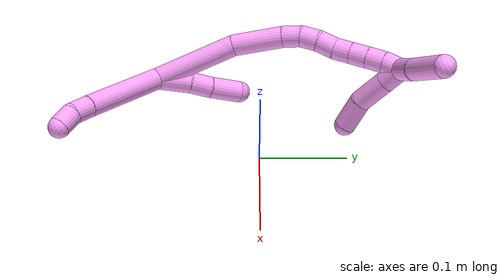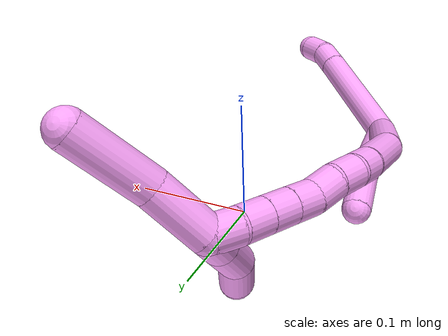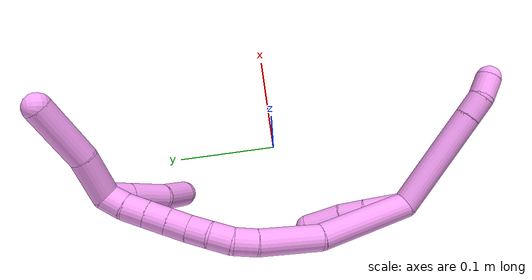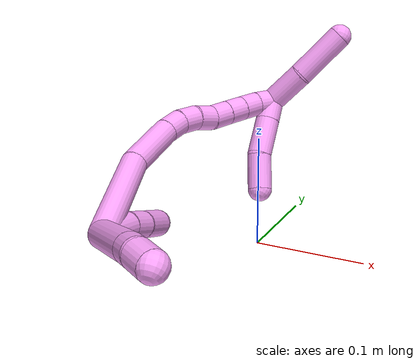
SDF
<sdf version="1.7">
 <world name="default">
  <model name="4">
   <static>0</static>
   <link name="4">
    <collision name="collision-cylinder-e_1_2_8">
     <pose>0.041677 -0.024176 -0.020626 2.27712 0.919343 1.64126</pose>
     <geometry><cylinder><radius>0.0125</radius><length>0.104822</length></cylinder></geometry>
     <surface>
      <friction><ode><mu>1.16</mu><mu2>1.16</mu2><slip1>0</slip1><slip2>0</slip2></ode></friction>
      <contact><ode><kp>1e+06</kp><kd>1</kd><max_vel>0</max_vel><min_depth>0.001</min_depth></ode></contact>
     </surface>
    </collision>
    <visual name="visual-cylinder-e_1_2_8">
     <pose>0.041677 -0.024176 -0.020626 2.27712 0.919343 1.64126</pose>
     <geometry><cylinder><radius>0.0125</radius><length>0.104822</length></cylinder></geometry>
     <material><ambient>1 0.65098 0.996078 1</ambient></material>
    </visual>
    <collision name="collision-cylinder-e_2_8_9">
     <pose>0.092373 -0.053303 -0.046092 2.34492 0.916015 1.72835</pose>
     <geometry><cylinder><radius>0.0125</radius><length>0.022738</length></cylinder></geometry>
     <surface>
      <friction><ode><mu>1.16</mu><mu2>1.16</mu2><slip1>0</slip1><slip2>0</slip2></ode></friction>
      <contact><ode><kp>1e+06</kp><kd>1</kd><max_vel>0</max_vel><min_depth>0.001</min_depth></ode></contact>
     </surface>
    </collision>
    <visual name="visual-cylinder-e_2_8_9">
     <pose>0.092373 -0.053303 -0.046092 2.34492 0.916015 1.72835</pose>
     <geometry><cylinder><radius>0.0125</radius><length>0.022738</length></cylinder></geometry>
     <material><ambient>1 0.65098 0.996078 1</ambient></material>
    </visual>
    <collision name="collision-cylinder-e_3_9_6">
     <pose>0.11108 -0.059585 -0.05643 2.90394 1.04238 2.73156</pose>
     <geometry><cylinder><radius>0.0125</radius><length>0.02244</length></cylinder></geometry>
     <surface>
      <friction><ode><mu>1.16</mu><mu2>1.16</mu2><slip1>0</slip1><slip2>0</slip2></ode></friction>
      <contact><ode><kp>1e+06</kp><kd>1</kd><max_vel>0</max_vel><min_depth>0.001</min_depth></ode></contact>
     </surface>
    </collision>
    <visual name="visual-cylinder-e_3_9_6">
     <pose>0.11108 -0.059585 -0.05643 2.90394 1.04238 2.73156</pose>
     <geometry><cylinder><radius>0.0125</radius><length>0.02244</length></cylinder></geometry>
     <material><ambient>1 0.65098 0.996078 1</ambient></material>
    </visual>
    <collision name="collision-cylinder-e_1_2_10">
     <pose>-0.002949 0.0147 0.012527 -0.865041 -0.151508 0.070053</pose>
     <geometry><cylinder><radius>0.0125</radius><length>0.039076</length></cylinder></geometry>
     <surface>
      <friction><ode><mu>1.16</mu><mu2>1.16</mu2><slip1>0</slip1><slip2>0</slip2></ode></friction>
      <contact><ode><kp>1e+06</kp><kd>1</kd><max_vel>0</max_vel><min_depth>0.001</min_depth></ode></contact>
     </surface>
    </collision>
    <visual name="visual-cylinder-e_1_2_10">
     <pose>-0.002949 0.0147 0.012527 -0.865041 -0.151508 0.070053</pose>
     <geometry><cylinder><radius>0.0125</radius><length>0.039076</length></cylinder></geometry>
     <material><ambient>1 0.65098 0.996078 1</ambient></material>
    </visual>
    <collision name="collision-cylinder-e_2_10_11">
     <pose>-0.008002 0.039706 0.031513 -1.01096 -0.171357 0.094997</pose>
     <geometry><cylinder><radius>0.0125</radius><length>0.024686</length></cylinder></geometry>
     <surface>
      <friction><ode><mu>1.16</mu><mu2>1.16</mu2><slip1>0</slip1><slip2>0</slip2></ode></friction>
      <contact><ode><kp>1e+06</kp><kd>1</kd><max_vel>0</max_vel><min_depth>0.001</min_depth></ode></contact>
     </surface>
    </collision>
    <visual name="visual-cylinder-e_2_10_11">
     <pose>-0.008002 0.039706 0.031513 -1.01096 -0.171357 0.094997</pose>
     <geometry><cylinder><radius>0.0125</radius><length>0.024686</length></cylinder></geometry>
     <material><ambient>1 0.65098 0.996078 1</ambient></material>
    </visual>
    <collision name="collision-cylinder-e_3_11_5">
     <pose>-0.015349 0.064636 0.047297 -1.00319 -0.293492 0.161755</pose>
     <geometry><cylinder><radius>0.0125</radius><length>0.036239</length></cylinder></geometry>
     <surface>
      <friction><ode><mu>1.16</mu><mu2>1.16</mu2><slip1>0</slip1><slip2>0</slip2></ode></friction>
      <contact><ode><kp>1e+06</kp><kd>1</kd><max_vel>0</max_vel><min_depth>0.001</min_depth></ode></contact>
     </surface>
    </collision>
    <visual name="visual-cylinder-e_3_11_5">
     <pose>-0.015349 0.064636 0.047297 -1.00319 -0.293492 0.161755</pose>
     <geometry><cylinder><radius>0.0125</radius><length>0.036239</length></cylinder></geometry>
     <material><ambient>1 0.65098 0.996078 1</ambient></material>
    </visual>
    <collision name="collision-cylinder-e_1_2_12">
     <pose>-0.011729 0.013612 0.045211 -0.292436 -0.243479 0.036031</pose>
     <geometry><cylinder><radius>0.0125</radius><length>0.097301</length></cylinder></geometry>
     <surface>
      <friction><ode><mu>1.16</mu><mu2>1.16</mu2><slip1>0</slip1><slip2>0</slip2></ode></friction>
      <contact><ode><kp>1e+06</kp><kd>1</kd><max_vel>0</max_vel><min_depth>0.001</min_depth></ode></contact>
     </surface>
    </collision>
    <visual name="visual-cylinder-e_1_2_12">
     <pose>-0.011729 0.013612 0.045211 -0.292436 -0.243479 0.036031</pose>
     <geometry><cylinder><radius>0.0125</radius><length>0.097301</length></cylinder></geometry>
     <material><ambient>1 0.65098 0.996078 1</ambient></material>
    </visual>
    <collision name="collision-cylinder-e_2_12_13">
     <pose>-0.023602 0.039777 0.11726 -0.437518 -0.00489 0.001087</pose>
     <geometry><cylinder><radius>0.0125</radius><length>0.059258</length></cylinder></geometry>
     <surface>
      <friction><ode><mu>1.16</mu><mu2>1.16</mu2><slip1>0</slip1><slip2>0</slip2></ode></friction>
      <contact><ode><kp>1e+06</kp><kd>1</kd><max_vel>0</max_vel><min_depth>0.001</min_depth></ode></contact>
     </surface>
    </collision>
    <visual name="visual-cylinder-e_2_12_13">
     <pose>-0.023602 0.039777 0.11726 -0.437518 -0.00489 0.001087</pose>
     <geometry><cylinder><radius>0.0125</radius><length>0.059258</length></cylinder></geometry>
     <material><ambient>1 0.65098 0.996078 1</ambient></material>
    </visual>
    <collision name="collision-cylinder-e_3_13_14">
     <pose>-0.022357 0.057775 0.153414 -0.528881 0.128115 -0.034735</pose>
     <geometry><cylinder><radius>0.0125</radius><length>0.02176</length></cylinder></geometry>
     <surface>
      <friction><ode><mu>1.16</mu><mu2>1.16</mu2><slip1>0</slip1><slip2>0</slip2></ode></friction>
      <contact><ode><kp>1e+06</kp><kd>1</kd><max_vel>0</max_vel><min_depth>0.001</min_depth></ode></contact>
     </surface>
    </collision>
    <visual name="visual-cylinder-e_3_13_14">
     <pose>-0.022357 0.057775 0.153414 -0.528881 0.128115 -0.034735</pose>
     <geometry><cylinder><radius>0.0125</radius><length>0.02176</length></cylinder></geometry>
     <material><ambient>1 0.65098 0.996078 1</ambient></material>
    </visual>
    <collision name="collision-cylinder-e_4_14_15">
     <pose>-0.017918 0.069907 0.169832 -0.755364 0.302908 -0.120952</pose>
     <geometry><cylinder><radius>0.0125</radius><length>0.020441</length></cylinder></geometry>
     <surface>
      <friction><ode><mu>1.16</mu><mu2>1.16</mu2><slip1>0</slip1><slip2>0</slip2></ode></friction>
      <contact><ode><kp>1e+06</kp><kd>1</kd><max_vel>0</max_vel><min_depth>0.001</min_depth></ode></contact>
     </surface>
    </collision>
    <visual name="visual-cylinder-e_4_14_15">
     <pose>-0.017918 0.069907 0.169832 -0.755364 0.302908 -0.120952</pose>
     <geometry><cylinder><radius>0.0125</radius><length>0.020441</length></cylinder></geometry>
     <material><ambient>1 0.65098 0.996078 1</ambient></material>
    </visual>
    <collision name="collision-cylinder-e_5_15_16">
     <pose>-0.012043 0.084993 0.182596 -0.977602 0.272126 -0.145373</pose>
     <geometry><cylinder><radius>0.0125</radius><length>0.021031</length></cylinder></geometry>
     <surface>
      <friction><ode><mu>1.16</mu><mu2>1.16</mu2><slip1>0</slip1><slip2>0</slip2></ode></friction>
      <contact><ode><kp>1e+06</kp><kd>1</kd><max_vel>0</max_vel><min_depth>0.001</min_depth></ode></contact>
     </surface>
    </collision>
    <visual name="visual-cylinder-e_5_15_16">
     <pose>-0.012043 0.084993 0.182596 -0.977602 0.272126 -0.145373</pose>
     <geometry><cylinder><radius>0.0125</radius><length>0.021031</length></cylinder></geometry>
     <material><ambient>1 0.65098 0.996078 1</ambient></material>
    </visual>
    <collision name="collision-cylinder-e_6_16_17">
     <pose>-0.005568 0.099529 0.195372 -0.711899 0.370457 -0.139103</pose>
     <geometry><cylinder><radius>0.0125</radius><length>0.02016</length></cylinder></geometry>
     <surface>
      <friction><ode><mu>1.16</mu><mu2>1.16</mu2><slip1>0</slip1><slip2>0</slip2></ode></friction>
      <contact><ode><kp>1e+06</kp><kd>1</kd><max_vel>0</max_vel><min_depth>0.001</min_depth></ode></contact>
     </surface>
    </collision>
    <visual name="visual-cylinder-e_6_16_17">
     <pose>-0.005568 0.099529 0.195372 -0.711899 0.370457 -0.139103</pose>
     <geometry><cylinder><radius>0.0125</radius><length>0.02016</length></cylinder></geometry>
     <material><ambient>1 0.65098 0.996078 1</ambient></material>
    </visual>
    <collision name="collision-cylinder-e_7_17_18">
     <pose>0.001703 0.111823 0.209509 -0.719677 0.36991 -0.140544</pose>
     <geometry><cylinder><radius>0.0125</radius><length>0.020033</length></cylinder></geometry>
     <surface>
      <friction><ode><mu>1.16</mu><mu2>1.16</mu2><slip1>0</slip1><slip2>0</slip2></ode></friction>
      <contact><ode><kp>1e+06</kp><kd>1</kd><max_vel>0</max_vel><min_depth>0.001</min_depth></ode></contact>
     </surface>
    </collision>
    <visual name="visual-cylinder-e_7_17_18">
     <pose>0.001703 0.111823 0.209509 -0.719677 0.36991 -0.140544</pose>
     <geometry><cylinder><radius>0.0125</radius><length>0.020033</length></cylinder></geometry>
     <material><ambient>1 0.65098 0.996078 1</ambient></material>
    </visual>
    <collision name="collision-cylinder-e_8_18_19">
     <pose>0.00897 0.124152 0.223504 -0.724745 0.373162 -0.142892</pose>
     <geometry><cylinder><radius>0.0125</radius><length>0.020002</length></cylinder></geometry>
     <surface>
      <friction><ode><mu>1.16</mu><mu2>1.16</mu2><slip1>0</slip1><slip2>0</slip2></ode></friction>
      <contact><ode><kp>1e+06</kp><kd>1</kd><max_vel>0</max_vel><min_depth>0.001</min_depth></ode></contact>
     </surface>
    </collision>
    <visual name="visual-cylinder-e_8_18_19">
     <pose>0.00897 0.124152 0.223504 -0.724745 0.373162 -0.142892</pose>
     <geometry><cylinder><radius>0.0125</radius><length>0.020002</length></cylinder></geometry>
     <material><ambient>1 0.65098 0.996078 1</ambient></material>
    </visual>
    <collision name="collision-cylinder-e_9_19_1">
     <pose>0.017595 0.13669 0.236381 -0.822873 0.520689 -0.231435</pose>
     <geometry><cylinder><radius>0.0125</radius><length>0.020015</length></cylinder></geometry>
     <surface>
      <friction><ode><mu>1.16</mu><mu2>1.16</mu2><slip1>0</slip1><slip2>0</slip2></ode></friction>
      <contact><ode><kp>1e+06</kp><kd>1</kd><max_vel>0</max_vel><min_depth>0.001</min_depth></ode></contact>
     </surface>
    </collision>
    <visual name="visual-cylinder-e_9_19_1">
     <pose>0.017595 0.13669 0.236381 -0.822873 0.520689 -0.231435</pose>
     <geometry><cylinder><radius>0.0125</radius><length>0.020015</length></cylinder></geometry>
     <material><ambient>1 0.65098 0.996078 1</ambient></material>
    </visual>
    <collision name="collision-cylinder-e_1_1_20">
     <pose>0.039901 0.1385 0.25407 0.368807 0.940774 0.18911</pose>
     <geometry><cylinder><radius>0.0125</radius><length>0.04289</length></cylinder></geometry>
     <surface>
      <friction><ode><mu>1.16</mu><mu2>1.16</mu2><slip1>0</slip1><slip2>0</slip2></ode></friction>
      <contact><ode><kp>1e+06</kp><kd>1</kd><max_vel>0</max_vel><min_depth>0.001</min_depth></ode></contact>
     </surface>
    </collision>
    <visual name="visual-cylinder-e_1_1_20">
     <pose>0.039901 0.1385 0.25407 0.368807 0.940774 0.18911</pose>
     <geometry><cylinder><radius>0.0125</radius><length>0.04289</length></cylinder></geometry>
     <material><ambient>1 0.65098 0.996078 1</ambient></material>
    </visual>
    <collision name="collision-cylinder-e_2_20_4">
     <pose>0.077724 0.130502 0.285438 0.174033 0.800537 0.073788</pose>
     <geometry><cylinder><radius>0.0125</radius><length>0.05711</length></cylinder></geometry>
     <surface>
      <friction><ode><mu>1.16</mu><mu2>1.16</mu2><slip1>0</slip1><slip2>0</slip2></ode></friction>
      <contact><ode><kp>1e+06</kp><kd>1</kd><max_vel>0</max_vel><min_depth>0.001</min_depth></ode></contact>
     </surface>
    </collision>
    <visual name="visual-cylinder-e_2_20_4">
     <pose>0.077724 0.130502 0.285438 0.174033 0.800537 0.073788</pose>
     <geometry><cylinder><radius>0.0125</radius><length>0.05711</length></cylinder></geometry>
     <material><ambient>1 0.65098 0.996078 1</ambient></material>
    </visual>
    <collision name="collision-cylinder-e_1_1_21">
     <pose>0.021617 0.145118 0.230648 -2.96613 -0.080703 0.860668</pose>
     <geometry><cylinder><radius>0.0125</radius><length>0.023715</length></cylinder></geometry>
     <surface>
      <friction><ode><mu>1.16</mu><mu2>1.16</mu2><slip1>0</slip1><slip2>0</slip2></ode></friction>
      <contact><ode><kp>1e+06</kp><kd>1</kd><max_vel>0</max_vel><min_depth>0.001</min_depth></ode></contact>
     </surface>
    </collision>
    <visual name="visual-cylinder-e_1_1_21">
     <pose>0.021617 0.145118 0.230648 -2.96613 -0.080703 0.860668</pose>
     <geometry><cylinder><radius>0.0125</radius><length>0.023715</length></cylinder></geometry>
     <material><ambient>1 0.65098 0.996078 1</ambient></material>
    </visual>
    <collision name="collision-cylinder-e_2_21_22">
     <pose>0.01892 0.150574 0.199484 -2.96952 -0.08766 0.940845</pose>
     <geometry><cylinder><radius>0.0125</radius><length>0.03979</length></cylinder></geometry>
     <surface>
      <friction><ode><mu>1.16</mu><mu2>1.16</mu2><slip1>0</slip1><slip2>0</slip2></ode></friction>
      <contact><ode><kp>1e+06</kp><kd>1</kd><max_vel>0</max_vel><min_depth>0.001</min_depth></ode></contact>
     </surface>
    </collision>
    <visual name="visual-cylinder-e_2_21_22">
     <pose>0.01892 0.150574 0.199484 -2.96952 -0.08766 0.940845</pose>
     <geometry><cylinder><radius>0.0125</radius><length>0.03979</length></cylinder></geometry>
     <material><ambient>1 0.65098 0.996078 1</ambient></material>
    </visual>
    <collision name="collision-cylinder-e_3_22_3">
     <pose>0.017631 0.161768 0.163468 -2.69975 0.024806 -0.110344</pose>
     <geometry><cylinder><radius>0.0125</radius><length>0.036495</length></cylinder></geometry>
     <surface>
      <friction><ode><mu>1.16</mu><mu2>1.16</mu2><slip1>0</slip1><slip2>0</slip2></ode></friction>
      <contact><ode><kp>1e+06</kp><kd>1</kd><max_vel>0</max_vel><min_depth>0.001</min_depth></ode></contact>
     </surface>
    </collision>
    <visual name="visual-cylinder-e_3_22_3">
     <pose>0.017631 0.161768 0.163468 -2.69975 0.024806 -0.110344</pose>
     <geometry><cylinder><radius>0.0125</radius><length>0.036495</length></cylinder></geometry>
     <material><ambient>1 0.65098 0.996078 1</ambient></material>
    </visual>
    <collision name="collision-sphere-3">
     <pose>0.018083 0.169568 0.146978 0 -0 0</pose>
     <geometry><sphere><radius>0.0125</radius></sphere></geometry>
     <surface>
      <friction><ode><mu>1.16</mu><mu2>1.16</mu2><slip1>0</slip1><slip2>0</slip2></ode></friction>
      <contact><ode><kp>1e+06</kp><kd>1</kd><max_vel>0</max_vel><min_depth>0.001</min_depth></ode></contact>
     </surface>
    </collision>
    <visual name="visual-sphere-3">
     <pose>0.018083 0.169568 0.146978 0 -0 0</pose>
     <geometry><sphere><radius>0.0125</radius></sphere></geometry>
     <material><ambient>1 0.65098 0.996078 1</ambient></material>
    </visual>
    <collision name="collision-sphere-22">
     <pose>0.017178 0.153968 0.179958 0 -0 0</pose>
     <geometry><sphere><radius>0.0125</radius></sphere></geometry>
     <surface>
      <friction><ode><mu>1.16</mu><mu2>1.16</mu2><slip1>0</slip1><slip2>0</slip2></ode></friction>
      <contact><ode><kp>1e+06</kp><kd>1</kd><max_vel>0</max_vel><min_depth>0.001</min_depth></ode></contact>
     </surface>
    </collision>
    <visual name="visual-sphere-22">
     <pose>0.017178 0.153968 0.179958 0 -0 0</pose>
     <geometry><sphere><radius>0.0125</radius></sphere></geometry>
     <material><ambient>1 0.65098 0.996078 1</ambient></material>
    </visual>
    <collision name="collision-sphere-21">
     <pose>0.020661 0.147181 0.21901 0 -0 0</pose>
     <geometry><sphere><radius>0.0125</radius></sphere></geometry>
     <surface>
      <friction><ode><mu>1.16</mu><mu2>1.16</mu2><slip1>0</slip1><slip2>0</slip2></ode></friction>
      <contact><ode><kp>1e+06</kp><kd>1</kd><max_vel>0</max_vel><min_depth>0.001</min_depth></ode></contact>
     </surface>
    </collision>
    <visual name="visual-sphere-21">
     <pose>0.020661 0.147181 0.21901 0 -0 0</pose>
     <geometry><sphere><radius>0.0125</radius></sphere></geometry>
     <material><ambient>1 0.65098 0.996078 1</ambient></material>
    </visual>
    <collision name="collision-sphere-4">
     <pose>0.098219 0.127059 0.305021 0 -0 0</pose>
     <geometry><sphere><radius>0.0125</radius></sphere></geometry>
     <surface>
      <friction><ode><mu>1.16</mu><mu2>1.16</mu2><slip1>0</slip1><slip2>0</slip2></ode></friction>
      <contact><ode><kp>1e+06</kp><kd>1</kd><max_vel>0</max_vel><min_depth>0.001</min_depth></ode></contact>
     </surface>
    </collision>
    <visual name="visual-sphere-4">
     <pose>0.098219 0.127059 0.305021 0 -0 0</pose>
     <geometry><sphere><radius>0.0125</radius></sphere></geometry>
     <material><ambient>1 0.65098 0.996078 1</ambient></material>
    </visual>
    <collision name="collision-sphere-20">
     <pose>0.057229 0.133945 0.265855 0 -0 0</pose>
     <geometry><sphere><radius>0.0125</radius></sphere></geometry>
     <surface>
      <friction><ode><mu>1.16</mu><mu2>1.16</mu2><slip1>0</slip1><slip2>0</slip2></ode></friction>
      <contact><ode><kp>1e+06</kp><kd>1</kd><max_vel>0</max_vel><min_depth>0.001</min_depth></ode></contact>
     </surface>
    </collision>
    <visual name="visual-sphere-20">
     <pose>0.057229 0.133945 0.265855 0 -0 0</pose>
     <geometry><sphere><radius>0.0125</radius></sphere></geometry>
     <material><ambient>1 0.65098 0.996078 1</ambient></material>
    </visual>
    <collision name="collision-sphere-11">
     <pose>-0.010107 0.050012 0.037972 0 -0 0</pose>
     <geometry><sphere><radius>0.0125</radius></sphere></geometry>
     <surface>
      <friction><ode><mu>1.16</mu><mu2>1.16</mu2><slip1>0</slip1><slip2>0</slip2></ode></friction>
      <contact><ode><kp>1e+06</kp><kd>1</kd><max_vel>0</max_vel><min_depth>0.001</min_depth></ode></contact>
     </surface>
    </collision>
    <visual name="visual-sphere-11">
     <pose>-0.010107 0.050012 0.037972 0 -0 0</pose>
     <geometry><sphere><radius>0.0125</radius></sphere></geometry>
     <material><ambient>1 0.65098 0.996078 1</ambient></material>
    </visual>
    <collision name="collision-sphere-10">
     <pose>-0.005898 0.029401 0.025055 0 -0 0</pose>
     <geometry><sphere><radius>0.0125</radius></sphere></geometry>
     <surface>
      <friction><ode><mu>1.16</mu><mu2>1.16</mu2><slip1>0</slip1><slip2>0</slip2></ode></friction>
      <contact><ode><kp>1e+06</kp><kd>1</kd><max_vel>0</max_vel><min_depth>0.001</min_depth></ode></contact>
     </surface>
    </collision>
    <visual name="visual-sphere-10">
     <pose>-0.005898 0.029401 0.025055 0 -0 0</pose>
     <geometry><sphere><radius>0.0125</radius></sphere></geometry>
     <material><ambient>1 0.65098 0.996078 1</ambient></material>
    </visual>
    <collision name="collision-sphere-6">
     <pose>0.12077 -0.060917 -0.061928 0 -0 0</pose>
     <geometry><sphere><radius>0.0125</radius></sphere></geometry>
     <surface>
      <friction><ode><mu>1.16</mu><mu2>1.16</mu2><slip1>0</slip1><slip2>0</slip2></ode></friction>
      <contact><ode><kp>1e+06</kp><kd>1</kd><max_vel>0</max_vel><min_depth>0.001</min_depth></ode></contact>
     </surface>
    </collision>
    <visual name="visual-sphere-6">
     <pose>0.12077 -0.060917 -0.061928 0 -0 0</pose>
     <geometry><sphere><radius>0.0125</radius></sphere></geometry>
     <material><ambient>1 0.65098 0.996078 1</ambient></material>
    </visual>
    <collision name="collision-sphere-9">
     <pose>0.10139 -0.058253 -0.050932 0 -0 0</pose>
     <geometry><sphere><radius>0.0125</radius></sphere></geometry>
     <surface>
      <friction><ode><mu>1.16</mu><mu2>1.16</mu2><slip1>0</slip1><slip2>0</slip2></ode></friction>
      <contact><ode><kp>1e+06</kp><kd>1</kd><max_vel>0</max_vel><min_depth>0.001</min_depth></ode></contact>
     </surface>
    </collision>
    <visual name="visual-sphere-9">
     <pose>0.10139 -0.058253 -0.050932 0 -0 0</pose>
     <geometry><sphere><radius>0.0125</radius></sphere></geometry>
     <material><ambient>1 0.65098 0.996078 1</ambient></material>
    </visual>
    <collision name="collision-sphere-2">
     <geometry><sphere><radius>0.0125</radius></sphere></geometry>
     <surface>
      <friction><ode><mu>1.16</mu><mu2>1.16</mu2><slip1>0</slip1><slip2>0</slip2></ode></friction>
      <contact><ode><kp>1e+06</kp><kd>1</kd><max_vel>0</max_vel><min_depth>0.001</min_depth></ode></contact>
     </surface>
    </collision>
    <visual name="visual-sphere-2">
     <geometry><sphere><radius>0.0125</radius></sphere></geometry>
     <material><ambient>1 0.65098 0.996078 1</ambient></material>
    </visual>
    <collision name="collision-sphere-19">
     <pose>0.012616 0.130326 0.230477 0 -0 0</pose>
     <geometry><sphere><radius>0.0125</radius></sphere></geometry>
     <surface>
      <friction><ode><mu>1.16</mu><mu2>1.16</mu2><slip1>0</slip1><slip2>0</slip2></ode></friction>
      <contact><ode><kp>1e+06</kp><kd>1</kd><max_vel>0</max_vel><min_depth>0.001</min_depth></ode></contact>
     </surface>
    </collision>
    <visual name="visual-sphere-19">
     <pose>0.012616 0.130326 0.230477 0 -0 0</pose>
     <geometry><sphere><radius>0.0125</radius></sphere></geometry>
     <material><ambient>1 0.65098 0.996078 1</ambient></material>
    </visual>
    <collision name="collision-sphere-8">
     <pose>0.083355 -0.048352 -0.041252 0 -0 0</pose>
     <geometry><sphere><radius>0.0125</radius></sphere></geometry>
     <surface>
      <friction><ode><mu>1.16</mu><mu2>1.16</mu2><slip1>0</slip1><slip2>0</slip2></ode></friction>
      <contact><ode><kp>1e+06</kp><kd>1</kd><max_vel>0</max_vel><min_depth>0.001</min_depth></ode></contact>
     </surface>
    </collision>
    <visual name="visual-sphere-8">
     <pose>0.083355 -0.048352 -0.041252 0 -0 0</pose>
     <geometry><sphere><radius>0.0125</radius></sphere></geometry>
     <material><ambient>1 0.65098 0.996078 1</ambient></material>
    </visual>
    <collision name="collision-sphere-5">
     <pose>-0.020591 0.079261 0.056621 0 -0 0</pose>
     <geometry><sphere><radius>0.0125</radius></sphere></geometry>
     <surface>
      <friction><ode><mu>1.16</mu><mu2>1.16</mu2><slip1>0</slip1><slip2>0</slip2></ode></friction>
      <contact><ode><kp>1e+06</kp><kd>1</kd><max_vel>0</max_vel><min_depth>0.001</min_depth></ode></contact>
     </surface>
    </collision>
    <visual name="visual-sphere-5">
     <pose>-0.020591 0.079261 0.056621 0 -0 0</pose>
     <geometry><sphere><radius>0.0125</radius></sphere></geometry>
     <material><ambient>1 0.65098 0.996078 1</ambient></material>
    </visual>
    <collision name="collision-sphere-12">
     <pose>-0.023457 0.027223 0.090422 0 -0 0</pose>
     <geometry><sphere><radius>0.0125</radius></sphere></geometry>
     <surface>
      <friction><ode><mu>1.16</mu><mu2>1.16</mu2><slip1>0</slip1><slip2>0</slip2></ode></friction>
      <contact><ode><kp>1e+06</kp><kd>1</kd><max_vel>0</max_vel><min_depth>0.001</min_depth></ode></contact>
     </surface>
    </collision>
    <visual name="visual-sphere-12">
     <pose>-0.023457 0.027223 0.090422 0 -0 0</pose>
     <geometry><sphere><radius>0.0125</radius></sphere></geometry>
     <material><ambient>1 0.65098 0.996078 1</ambient></material>
    </visual>
    <collision name="collision-sphere-13">
     <pose>-0.023747 0.05233 0.144098 0 -0 0</pose>
     <geometry><sphere><radius>0.0125</radius></sphere></geometry>
     <surface>
      <friction><ode><mu>1.16</mu><mu2>1.16</mu2><slip1>0</slip1><slip2>0</slip2></ode></friction>
      <contact><ode><kp>1e+06</kp><kd>1</kd><max_vel>0</max_vel><min_depth>0.001</min_depth></ode></contact>
     </surface>
    </collision>
    <visual name="visual-sphere-13">
     <pose>-0.023747 0.05233 0.144098 0 -0 0</pose>
     <geometry><sphere><radius>0.0125</radius></sphere></geometry>
     <material><ambient>1 0.65098 0.996078 1</ambient></material>
    </visual>
    <collision name="collision-sphere-14">
     <pose>-0.020967 0.063219 0.162731 0 -0 0</pose>
     <geometry><sphere><radius>0.0125</radius></sphere></geometry>
     <surface>
      <friction><ode><mu>1.16</mu><mu2>1.16</mu2><slip1>0</slip1><slip2>0</slip2></ode></friction>
      <contact><ode><kp>1e+06</kp><kd>1</kd><max_vel>0</max_vel><min_depth>0.001</min_depth></ode></contact>
     </surface>
    </collision>
    <visual name="visual-sphere-14">
     <pose>-0.020967 0.063219 0.162731 0 -0 0</pose>
     <geometry><sphere><radius>0.0125</radius></sphere></geometry>
     <material><ambient>1 0.65098 0.996078 1</ambient></material>
    </visual>
    <collision name="collision-sphere-15">
     <pose>-0.01487 0.076595 0.176934 0 -0 0</pose>
     <geometry><sphere><radius>0.0125</radius></sphere></geometry>
     <surface>
      <friction><ode><mu>1.16</mu><mu2>1.16</mu2><slip1>0</slip1><slip2>0</slip2></ode></friction>
      <contact><ode><kp>1e+06</kp><kd>1</kd><max_vel>0</max_vel><min_depth>0.001</min_depth></ode></contact>
     </surface>
    </collision>
    <visual name="visual-sphere-15">
     <pose>-0.01487 0.076595 0.176934 0 -0 0</pose>
     <geometry><sphere><radius>0.0125</radius></sphere></geometry>
     <material><ambient>1 0.65098 0.996078 1</ambient></material>
    </visual>
    <collision name="collision-sphere-16">
     <pose>-0.009217 0.093391 0.188258 0 -0 0</pose>
     <geometry><sphere><radius>0.0125</radius></sphere></geometry>
     <surface>
      <friction><ode><mu>1.16</mu><mu2>1.16</mu2><slip1>0</slip1><slip2>0</slip2></ode></friction>
      <contact><ode><kp>1e+06</kp><kd>1</kd><max_vel>0</max_vel><min_depth>0.001</min_depth></ode></contact>
     </surface>
    </collision>
    <visual name="visual-sphere-16">
     <pose>-0.009217 0.093391 0.188258 0 -0 0</pose>
     <geometry><sphere><radius>0.0125</radius></sphere></geometry>
     <material><ambient>1 0.65098 0.996078 1</ambient></material>
    </visual>
    <collision name="collision-sphere-17">
     <pose>-0.001918 0.105667 0.202486 0 -0 0</pose>
     <geometry><sphere><radius>0.0125</radius></sphere></geometry>
     <surface>
      <friction><ode><mu>1.16</mu><mu2>1.16</mu2><slip1>0</slip1><slip2>0</slip2></ode></friction>
      <contact><ode><kp>1e+06</kp><kd>1</kd><max_vel>0</max_vel><min_depth>0.001</min_depth></ode></contact>
     </surface>
    </collision>
    <visual name="visual-sphere-17">
     <pose>-0.001918 0.105667 0.202486 0 -0 0</pose>
     <geometry><sphere><radius>0.0125</radius></sphere></geometry>
     <material><ambient>1 0.65098 0.996078 1</ambient></material>
    </visual>
    <collision name="collision-sphere-18">
     <pose>0.005324 0.117978 0.216532 0 -0 0</pose>
     <geometry><sphere><radius>0.0125</radius></sphere></geometry>
     <surface>
      <friction><ode><mu>1.16</mu><mu2>1.16</mu2><slip1>0</slip1><slip2>0</slip2></ode></friction>
      <contact><ode><kp>1e+06</kp><kd>1</kd><max_vel>0</max_vel><min_depth>0.001</min_depth></ode></contact>
     </surface>
    </collision>
    <visual name="visual-sphere-18">
     <pose>0.005324 0.117978 0.216532 0 -0 0</pose>
     <geometry><sphere><radius>0.0125</radius></sphere></geometry>
     <material><ambient>1 0.65098 0.996078 1</ambient></material>
    </visual>
    <collision name="collision-sphere-1">
     <pose>0.022573 0.143055 0.242285 0 -0 0</pose>
     <geometry><sphere><radius>0.0125</radius></sphere></geometry>
     <surface>
      <friction><ode><mu>1.16</mu><mu2>1.16</mu2><slip1>0</slip1><slip2>0</slip2></ode></friction>
      <contact><ode><kp>1e+06</kp><kd>1</kd><max_vel>0</max_vel><min_depth>0.001</min_depth></ode></contact>
     </surface>
    </collision>
    <visual name="visual-sphere-1">
     <pose>0.022573 0.143055 0.242285 0 -0 0</pose>
     <geometry><sphere><radius>0.0125</radius></sphere></geometry>
     <material><ambient>1 0.65098 0.996078 1</ambient></material>
    </visual>
    <inertial>
     <pose>0.017279 0.060219 0.112549 0 -0 0</pose>
     <mass>0.75</mass>
     <inertia>
      <ixx>0.000232</ixx>
      <ixy>0</ixy>
      <ixz>0</ixz>
      <iyy>0.000282</iyy>
      <iyz>0</iyz>
      <izz>-6.8e-05</izz>
     </inertia>
    </inertial>
   </link>
   <pose>-0.088297 -0.118949 0.039267 -0.861634 -0.259407 -0.100182</pose>
  </model>
 </world>
</sdf>
